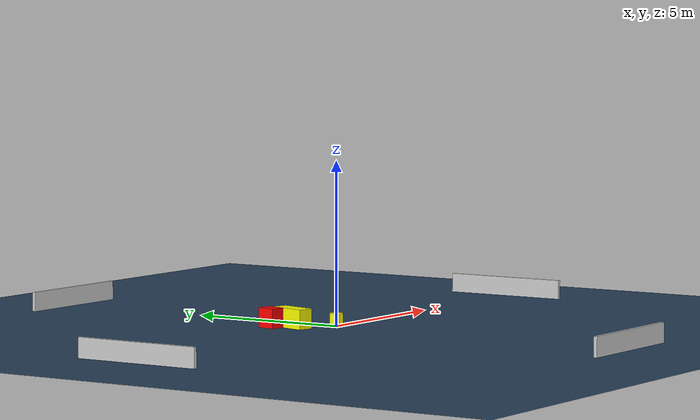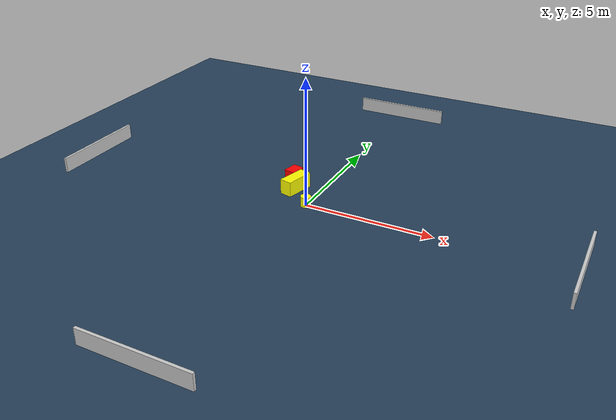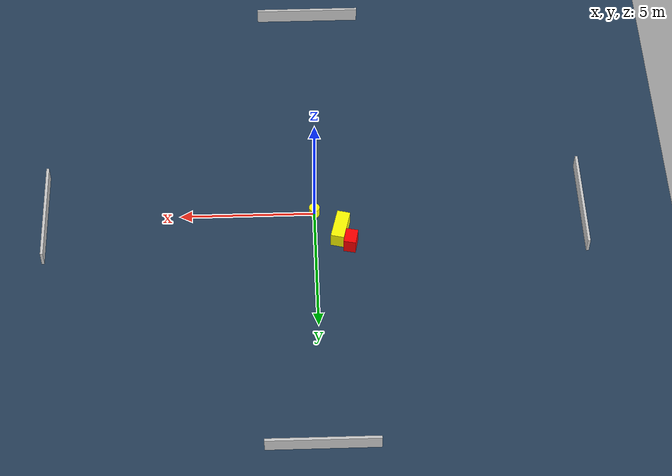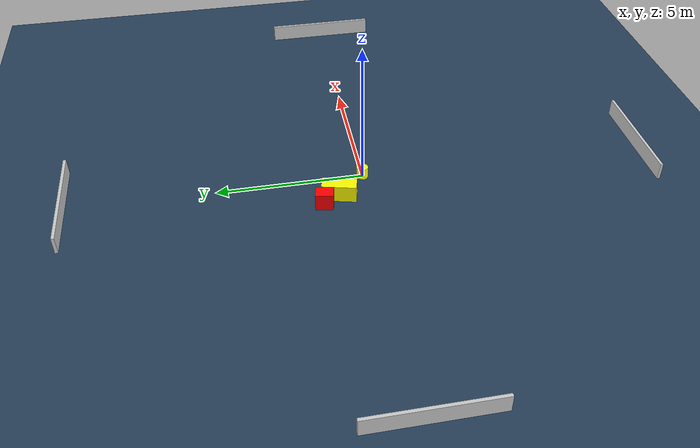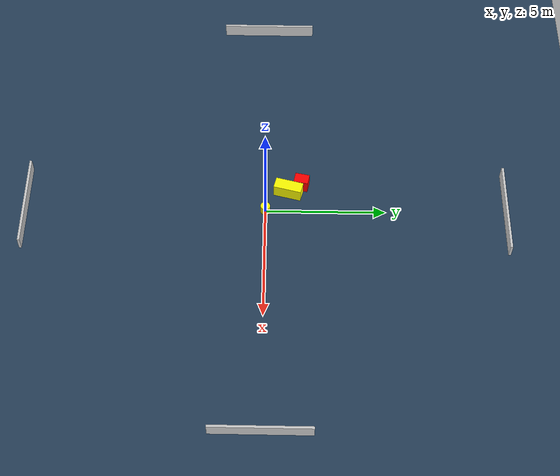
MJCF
<?xml version="1.0" ?>
<mujoco model="generated_environment">
  <option timestep="0.01" integrator="RK4" cone="elliptic"/>
  <default>
    <geom density="1"/>
  </default>
  <asset>
    <texture builtin="gradient" height="3072" name="skybox" rgb1="0.3 0.5 0.7" rgb2="0 0 0" type="skybox" width="512"/>
    <texture builtin="checker" height="300" name="groundplane" rgb1="0.2 0.3 0.4" rgb2="0.1 0.2 0.3" type="2d" width="300"/>
    <material name="groundplane" reflectance="0.2" texrepeat="5 5" texture="groundplane"/>
  </asset>
  <worldbody>
    <light dir="0 0 -1" directional="true" pos="0 0 1.5"/>
    <geom condim="3" friction="0.5 0.005 0.001" material="groundplane" name="floor" pos="0 0 0" size="0 0 0.05" type="plane"/>
    <body name="walls">
      <geom name="wall_1" condim="4" pos="-10.0 0.0 0.3" rgba="0.800000011920929 0.800000011920929 0.800000011920929 1.0" size="0.05 2.0 0.3" type="box"/>
      <geom name="wall_2" condim="4" pos="10.0 0.0 0.3" rgba="0.800000011920929 0.800000011920929 0.800000011920929 1.0" size="0.05 2.0 0.3" type="box"/>
      <geom name="wall_3" condim="4" pos="0.0 -10.0 0.3" rgba="0.800000011920929 0.800000011920929 0.800000011920929 1.0" size="2.0 0.05 0.3" type="box"/>
      <geom name="wall_4" condim="4" pos="0.0 10.0 0.3" rgba="0.800000011920929 0.800000011920929 0.800000011920929 1.0" size="2.0 0.05 0.3" type="box"/>
    </body>
    <body name="robot">
      <joint name="joint_x" type="slide" pos="0 0 0" axis="1 0 0"/>
      <joint name="joint_y" type="slide" pos="0 0 0" axis="0 1 0"/>
      <geom name="robot" type="cylinder" pos="0.0 0.0 0.2" size="0.2 0.2 0.0" mass="5.0" friction="1.0 0.005 0.0001" condim="4" rgba="1.0 1.0 0.0 1.0"/>
    </body>
    <body name="obstacle_1_movable">
      <geom name="obstacle_1_movable" condim="4" pos="-0.938740252626347 0.9509250923211141 0.3" euler="0 0 255.85190289675856" friction="0.0 0.005 0.001" rgba="1.0 1.0 0.0 1.0" size="0.5834616995609466 0.24387386609222123 0.3" type="box" mass="0.1"/>
      <joint type="free"/>
    </body>
    <body name="obstacle_2_static">
      <geom name="obstacle_2_static" condim="4" pos="-1.2981956135517219 1.4986043112320668 0.3" euler="0 0 258.48168218902345" friction="0.0 0.005 0.001" rgba="1.0 0.0 0.0 1.0" size="0.3004927708099173 0.22497339677615869 0.3" type="box"/>
    </body>
  </worldbody>
  <actuator>
    <motor name="actuator_x" joint="joint_x" gear="1" ctrlrange="-1 1"/>
    <motor name="actuator_y" joint="joint_y" gear="1" ctrlrange="-1 1"/>
  </actuator>
</mujoco>
